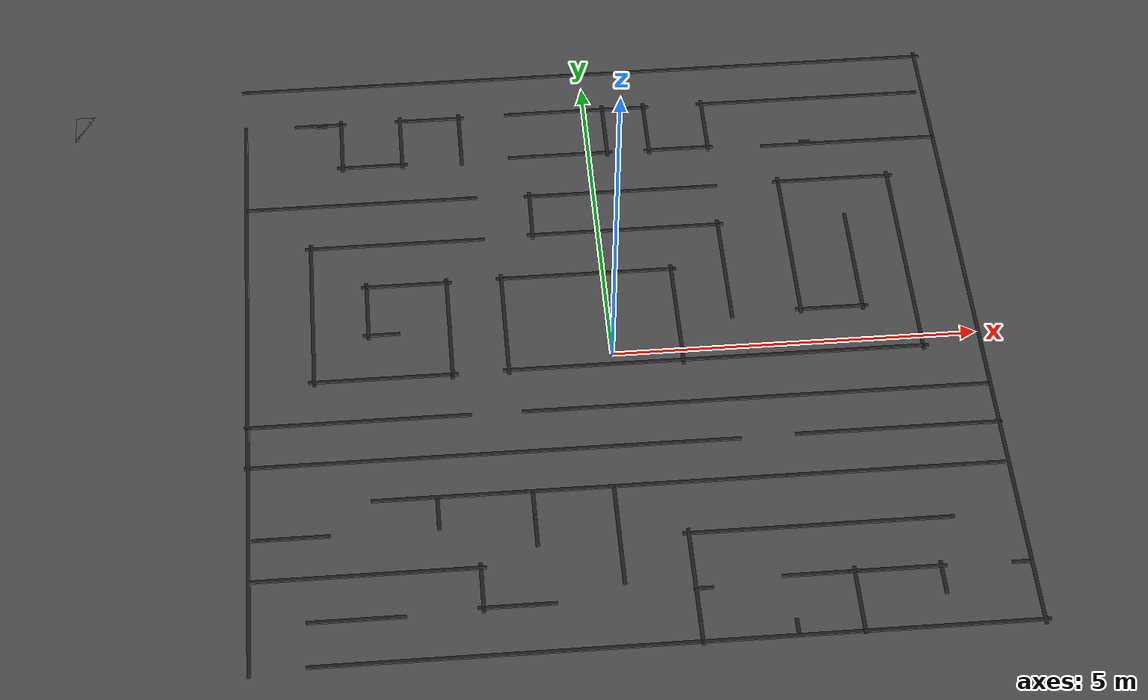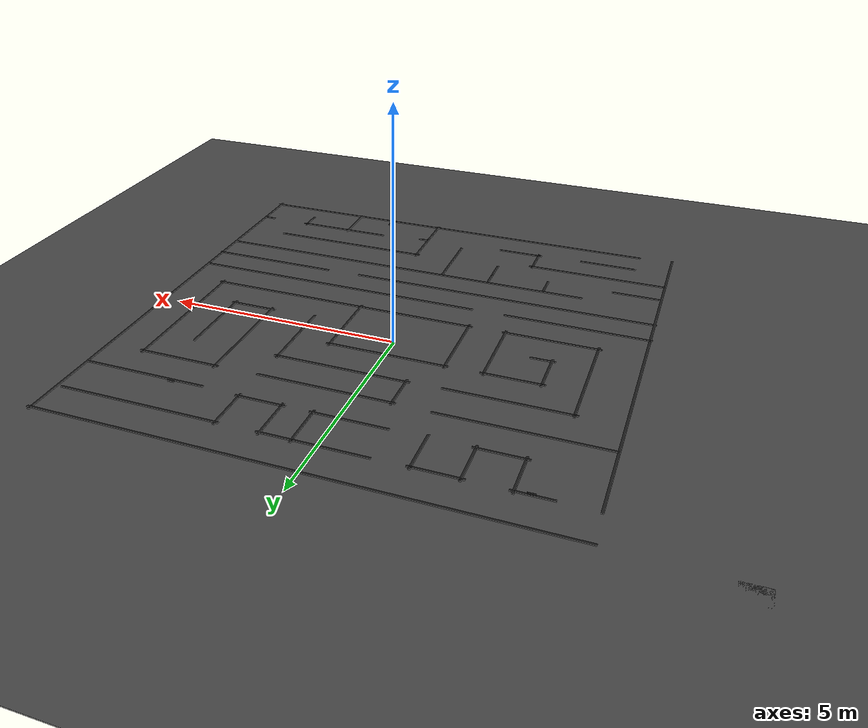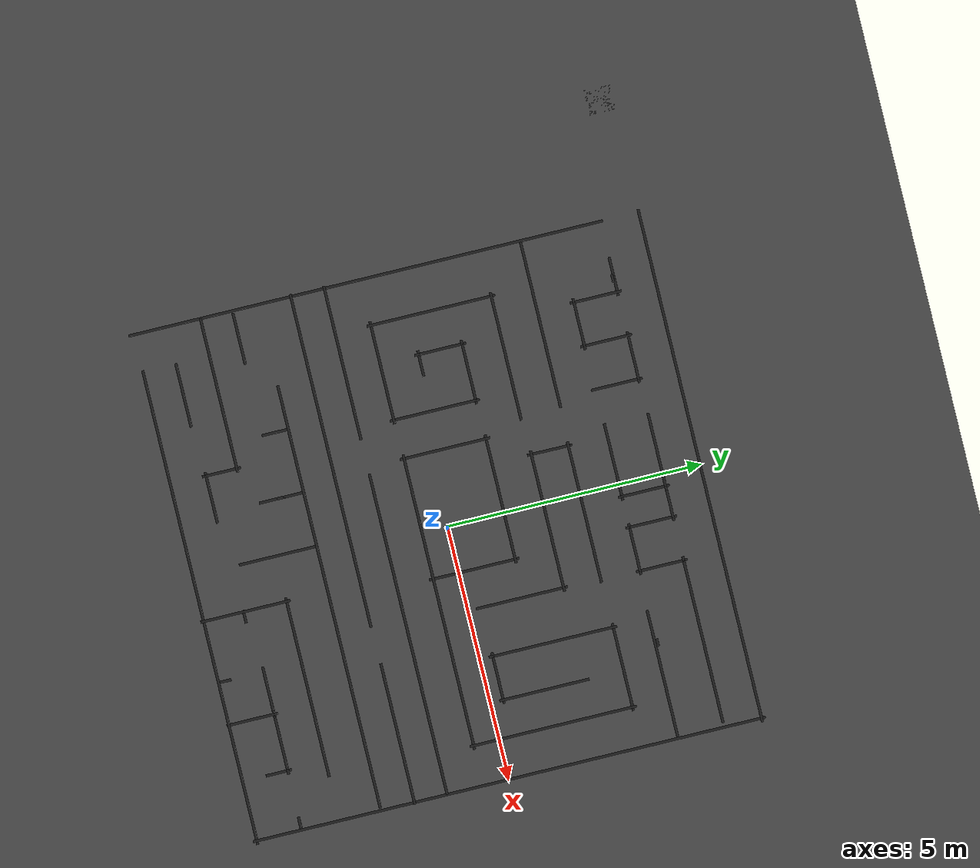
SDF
<sdf version="1.6">
 <world name="default">
  <model name="ground_plane">
   <static>1</static>
   <link name="link">
    <collision name="collision">
     <geometry><plane><normal>0 0 1</normal><size>100 100</size></plane></geometry>
     <surface><friction><ode><mu>100</mu><mu2>50</mu2></ode></friction></surface>
    </collision>
    <visual name="visual">
     <cast_shadows>0</cast_shadows>
     <geometry><plane><normal>0 0 1</normal><size>100 100</size></plane></geometry>
     <material>
      <script><uri>file://media/materials/scripts/gazebo.material</uri><name>Gazebo/Grey</name></script>
     </material>
    </visual>
   </link>
  </model>
  <model name="10x10_maze_2_top">
   <pose>0 0 0.4 0 -0 0</pose>
   <link name="Wall_102">
    <collision name="Wall_102_Collision">
     <geometry><box><size>3.25 0.05 0.01</size></box></geometry>
     <pose>0 0 0.005 0 -0 0</pose>
    </collision>
    <visual name="Wall_102_Visual">
     <pose>0 0 0.005 0 -0 0</pose>
     <geometry><box><size>3.25 0.05 0.01</size></box></geometry>
     <material>
      <script><uri>file://media/materials/scripts/gazebo.material</uri><name>Gazebo/Black</name></script>
      <ambient>0 0 0 1</ambient>
     </material>
    </visual>
    <pose>4.15557 1.06055 0 0 0 -1.5708</pose>
   </link>
   <link name="Wall_103">
    <collision name="Wall_103_Collision">
     <geometry><box><size>5.75 0.05 0.01</size></box></geometry>
     <pose>0 0 0.005 0 -0 0</pose>
    </collision>
    <visual name="Wall_103_Visual">
     <pose>0 0 0.005 0 -0 0</pose>
     <geometry><box><size>5.75 0.05 0.01</size></box></geometry>
     <material>
      <script><uri>file://media/materials/scripts/gazebo.material</uri><name>Gazebo/Black</name></script>
      <ambient>0 0 0 1</ambient>
     </material>
    </visual>
    <pose>1.35556 -0.489447 0 0 -0 3.14159</pose>
   </link>
   <link name="Wall_104">
    <collision name="Wall_104_Collision">
     <geometry><box><size>1.75 0.05 0.01</size></box></geometry>
     <pose>0 0 0.005 0 -0 0</pose>
    </collision>
    <visual name="Wall_104_Visual">
     <pose>0 0 0.005 0 -0 0</pose>
     <geometry><box><size>1.75 0.05 0.01</size></box></geometry>
     <material>
      <script><uri>file://media/materials/scripts/gazebo.material</uri><name>Gazebo/Black</name></script>
      <ambient>0 0 0 1</ambient>
     </material>
    </visual>
    <pose>-1.44443 0.310553 0 0 -0 1.5708</pose>
   </link>
   <link name="Wall_105">
    <collision name="Wall_105_Collision">
     <geometry><box><size>2.5 0.05 0.01</size></box></geometry>
     <pose>0 0 0.005 0 -0 0</pose>
    </collision>
    <visual name="Wall_105_Visual">
     <pose>0 0 0.005 0 -0 0</pose>
     <geometry><box><size>2.5 0.05 0.01</size></box></geometry>
     <material>
      <script><uri>file://media/materials/scripts/gazebo.material</uri><name>Gazebo/Black</name></script>
      <ambient>0 0 0 1</ambient>
     </material>
    </visual>
    <pose>-0.269435 1.11055 0 0 -0 0</pose>
   </link>
   <link name="Wall_106">
    <collision name="Wall_106_Collision">
     <geometry><box><size>1.75 0.05 0.01</size></box></geometry>
     <pose>0 0 0.005 0 -0 0</pose>
    </collision>
    <visual name="Wall_106_Visual">
     <pose>0 0 0.005 0 -0 0</pose>
     <geometry><box><size>1.75 0.05 0.01</size></box></geometry>
     <material>
      <script><uri>file://media/materials/scripts/gazebo.material</uri><name>Gazebo/Black</name></script>
      <ambient>0 0 0 1</ambient>
     </material>
    </visual>
    <pose>0.905565 0.310553 0 0 0 -1.5708</pose>
   </link>
   <link name="Wall_110">
    <collision name="Wall_110_Collision">
     <geometry><box><size>0.870658 0.05 0.01</size></box></geometry>
     <pose>0 0 0.005 0 -0 0</pose>
    </collision>
    <visual name="Wall_110_Visual">
     <pose>0 0 0.005 0 -0 0</pose>
     <geometry><box><size>0.870658 0.05 0.01</size></box></geometry>
     <material>
      <script><uri>file://media/materials/scripts/gazebo.material</uri><name>Gazebo/Black</name></script>
      <ambient>0 0 0 1</ambient>
     </material>
    </visual>
    <pose>-0.950482 2.23502 0 0 -0 1.56348</pose>
   </link>
   <link name="Wall_114">
    <collision name="Wall_114_Collision">
     <geometry><box><size>2.75 0.05 0.01</size></box></geometry>
     <pose>0 0 0.005 0 -0 0</pose>
    </collision>
    <visual name="Wall_114_Visual">
     <pose>0 0 0.005 0 -0 0</pose>
     <geometry><box><size>2.75 0.05 0.01</size></box></geometry>
     <material>
      <script><uri>file://media/materials/scripts/gazebo.material</uri><name>Gazebo/Black</name></script>
      <ambient>0 0 0 1</ambient>
     </material>
    </visual>
    <pose>0.346883 1.87471 0 0 -0 0</pose>
   </link>
   <link name="Wall_115">
    <collision name="Wall_115_Collision">
     <geometry><box><size>1.78042 0.05 0.01</size></box></geometry>
     <pose>0 0 0.005 0 -0 0</pose>
    </collision>
    <visual name="Wall_115_Visual">
     <pose>0 0 0.005 0 -0 0</pose>
     <geometry><box><size>1.78042 0.05 0.01</size></box></geometry>
     <material>
      <script><uri>file://media/materials/scripts/gazebo.material</uri><name>Gazebo/Black</name></script>
      <ambient>0 0 0 1</ambient>
     </material>
    </visual>
    <pose>1.64688 1.0595 0 0 0 -1.5708</pose>
   </link>
   <link name="Wall_120">
    <collision name="Wall_120_Collision">
     <geometry><box><size>2.5 0.05 0.01</size></box></geometry>
     <pose>0 0 0.005 0 -0 0</pose>
    </collision>
    <visual name="Wall_120_Visual">
     <pose>0 0 0.005 0 -0 0</pose>
     <geometry><box><size>2.5 0.05 0.01</size></box></geometry>
     <material>
      <script><uri>file://media/materials/scripts/gazebo.material</uri><name>Gazebo/Black</name></script>
      <ambient>0 0 0 1</ambient>
     </material>
    </visual>
    <pose>2.59579 1.43555 0 0 0 -1.5708</pose>
   </link>
   <link name="Wall_121">
    <collision name="Wall_121_Collision">
     <geometry><box><size>1 0.05 0.01</size></box></geometry>
     <pose>0 0 0.005 0 -0 0</pose>
    </collision>
    <visual name="Wall_121_Visual">
     <pose>0 0 0.005 0 -0 0</pose>
     <geometry><box><size>1 0.05 0.01</size></box></geometry>
     <material>
      <script><uri>file://media/materials/scripts/gazebo.material</uri><name>Gazebo/Black</name></script>
      <ambient>0 0 0 1</ambient>
     </material>
    </visual>
    <pose>3.02079 0.260553 0 0 -0 0</pose>
   </link>
   <link name="Wall_122">
    <collision name="Wall_122_Collision">
     <geometry><box><size>1.75 0.05 0.01</size></box></geometry>
     <pose>0 0 0.005 0 -0 0</pose>
    </collision>
    <visual name="Wall_122_Visual">
     <pose>0 0 0.005 0 -0 0</pose>
     <geometry><box><size>1.75 0.05 0.01</size></box></geometry>
     <material>
      <script><uri>file://media/materials/scripts/gazebo.material</uri><name>Gazebo/Black</name></script>
      <ambient>0 0 0 1</ambient>
     </material>
    </visual>
    <pose>3.44579 1.06055 0 0 -0 1.5708</pose>
   </link>
   <link name="Wall_124">
    <collision name="Wall_124_Collision">
     <geometry><box><size>2.5 0.05 0.01</size></box></geometry>
     <pose>0 0 0.005 0 -0 0</pose>
    </collision>
    <visual name="Wall_124_Visual">
     <pose>0 0 0.005 0 -0 0</pose>
     <geometry><box><size>2.5 0.05 0.01</size></box></geometry>
     <material>
      <script><uri>file://media/materials/scripts/gazebo.material</uri><name>Gazebo/Black</name></script>
      <ambient>0 0 0 1</ambient>
     </material>
    </visual>
    <pose>-2.87335 1.84429 0 0 -0 3.14159</pose>
   </link>
   <link name="Wall_128">
    <collision name="Wall_128_Collision">
     <geometry><box><size>2.5 0.05 0.01</size></box></geometry>
     <pose>0 0 0.005 0 -0 0</pose>
    </collision>
    <visual name="Wall_128_Visual">
     <pose>0 0 0.005 0 -0 0</pose>
     <geometry><box><size>2.5 0.05 0.01</size></box></geometry>
     <material>
      <script><uri>file://media/materials/scripts/gazebo.material</uri><name>Gazebo/Black</name></script>
      <ambient>0 0 0 1</ambient>
     </material>
    </visual>
    <pose>-4.04835 0.669288 0 0 0 -1.5708</pose>
   </link>
   <link name="Wall_129">
    <collision name="Wall_129_Collision">
     <geometry><box><size>2 0.05 0.01</size></box></geometry>
     <pose>0 0 0.005 0 -0 0</pose>
    </collision>
    <visual name="Wall_129_Visual">
     <pose>0 0 0.005 0 -0 0</pose>
     <geometry><box><size>2 0.05 0.01</size></box></geometry>
     <material>
      <script><uri>file://media/materials/scripts/gazebo.material</uri><name>Gazebo/Black</name></script>
      <ambient>0 0 0 1</ambient>
     </material>
    </visual>
    <pose>-3.12335 -0.505712 0 0 -0 0</pose>
   </link>
   <link name="Wall_130">
    <collision name="Wall_130_Collision">
     <geometry><box><size>1.75 0.05 0.01</size></box></geometry>
     <pose>0 0 0.005 0 -0 0</pose>
    </collision>
    <visual name="Wall_130_Visual">
     <pose>0 0 0.005 0 -0 0</pose>
     <geometry><box><size>1.75 0.05 0.01</size></box></geometry>
     <material>
      <script><uri>file://media/materials/scripts/gazebo.material</uri><name>Gazebo/Black</name></script>
      <ambient>0 0 0 1</ambient>
     </material>
    </visual>
    <pose>-2.19835 0.294288 0 0 -0 1.5708</pose>
   </link>
   <link name="Wall_131">
    <collision name="Wall_131_Collision">
     <geometry><box><size>1.25 0.05 0.01</size></box></geometry>
     <pose>0 0 0.005 0 -0 0</pose>
    </collision>
    <visual name="Wall_131_Visual">
     <pose>0 0 0.005 0 -0 0</pose>
     <geometry><box><size>1.25 0.05 0.01</size></box></geometry>
     <material>
      <script><uri>file://media/materials/scripts/gazebo.material</uri><name>Gazebo/Black</name></script>
      <ambient>0 0 0 1</ambient>
     </material>
    </visual>
    <pose>-2.74835 1.09429 0 0 -0 3.14159</pose>
   </link>
   <link name="Wall_132">
    <collision name="Wall_132_Collision">
     <geometry><box><size>1 0.05 0.01</size></box></geometry>
     <pose>0 0 0.005 0 -0 0</pose>
    </collision>
    <visual name="Wall_132_Visual">
     <pose>0 0 0.005 0 -0 0</pose>
     <geometry><box><size>1 0.05 0.01</size></box></geometry>
     <material>
      <script><uri>file://media/materials/scripts/gazebo.material</uri><name>Gazebo/Black</name></script>
      <ambient>0 0 0 1</ambient>
     </material>
    </visual>
    <pose>-3.29834 0.669288 0 0 0 -1.5708</pose>
   </link>
   <link name="Wall_133">
    <collision name="Wall_133_Collision">
     <geometry><box><size>0.5 0.05 0.01</size></box></geometry>
     <pose>0 0 0.005 0 -0 0</pose>
    </collision>
    <visual name="Wall_133_Visual">
     <pose>0 0 0.005 0 -0 0</pose>
     <geometry><box><size>0.5 0.05 0.01</size></box></geometry>
     <material>
      <script><uri>file://media/materials/scripts/gazebo.material</uri><name>Gazebo/Black</name></script>
      <ambient>0 0 0 1</ambient>
     </material>
    </visual>
    <pose>-3.12335 0.244288 0 0 -0 0</pose>
   </link>
   <link name="Wall_135">
    <collision name="Wall_135_Collision">
     <geometry><box><size>3 0.05 0.01</size></box></geometry>
     <pose>0 0 0.005 0 -0 0</pose>
    </collision>
    <visual name="Wall_135_Visual">
     <pose>0 0 0.005 0 -0 0</pose>
     <geometry><box><size>3 0.05 0.01</size></box></geometry>
     <material>
      <script><uri>file://media/materials/scripts/gazebo.material</uri><name>Gazebo/Black</name></script>
      <ambient>0 0 0 1</ambient>
     </material>
    </visual>
    <pose>-3.48239 -1.19746 0 0 -0 0</pose>
   </link>
   <link name="Wall_137">
    <collision name="Wall_137_Collision">
     <geometry><box><size>6.25 0.05 0.01</size></box></geometry>
     <pose>0 0 0.005 0 -0 0</pose>
    </collision>
    <visual name="Wall_137_Visual">
     <pose>0 0 0.005 0 -0 0</pose>
     <geometry><box><size>6.25 0.05 0.01</size></box></geometry>
     <material>
      <script><uri>file://media/materials/scripts/gazebo.material</uri><name>Gazebo/Black</name></script>
      <ambient>0 0 0 1</ambient>
     </material>
    </visual>
    <pose>1.80792 -1.19746 0 0 -0 0</pose>
   </link>
   <link name="Wall_139">
    <collision name="Wall_139_Collision">
     <geometry><box><size>6.5 0.05 0.01</size></box></geometry>
     <pose>0 0 0.005 0 -0 0</pose>
    </collision>
    <visual name="Wall_139_Visual">
     <pose>0 0 0.005 0 -0 0</pose>
     <geometry><box><size>6.5 0.05 0.01</size></box></geometry>
     <material>
      <script><uri>file://media/materials/scripts/gazebo.material</uri><name>Gazebo/Black</name></script>
      <ambient>0 0 0 1</ambient>
     </material>
    </visual>
    <pose>-1.73239 -1.85144 0 0 -0 0</pose>
   </link>
   <link name="Wall_141">
    <collision name="Wall_141_Collision">
     <geometry><box><size>2.75 0.05 0.01</size></box></geometry>
     <pose>0 0 0.005 0 -0 0</pose>
    </collision>
    <visual name="Wall_141_Visual">
     <pose>0 0 0.005 0 -0 0</pose>
     <geometry><box><size>2.75 0.05 0.01</size></box></geometry>
     <material>
      <script><uri>file://media/materials/scripts/gazebo.material</uri><name>Gazebo/Black</name></script>
      <ambient>0 0 0 1</ambient>
     </material>
    </visual>
    <pose>3.60156 -1.83623 0 0 -0 0</pose>
   </link>
   <link name="Wall_145">
    <collision name="Wall_145_Collision">
     <geometry><box><size>8.25 0.05 0.01</size></box></geometry>
     <pose>0 0 0.005 0 -0 0</pose>
    </collision>
    <visual name="Wall_145_Visual">
     <pose>0 0 0.005 0 -0 0</pose>
     <geometry><box><size>8.25 0.05 0.01</size></box></geometry>
     <material>
      <script><uri>file://media/materials/scripts/gazebo.material</uri><name>Gazebo/Black</name></script>
      <ambient>0 0 0 1</ambient>
     </material>
    </visual>
    <pose>0.769944 -2.49021 0 0 -0 0</pose>
   </link>
   <link name="Wall_153">
    <collision name="Wall_153_Collision">
     <geometry><box><size>1.25 0.05 0.01</size></box></geometry>
     <pose>0 0 0.005 0 -0 0</pose>
    </collision>
    <visual name="Wall_153_Visual">
     <pose>0 0 0.005 0 -0 0</pose>
     <geometry><box><size>1.25 0.05 0.01</size></box></geometry>
     <material>
      <script><uri>file://media/materials/scripts/gazebo.material</uri><name>Gazebo/Black</name></script>
      <ambient>0 0 0 1</ambient>
     </material>
    </visual>
    <pose>-3.59695 -4.26963 0 0 -0 0</pose>
   </link>
   <link name="Wall_156">
    <collision name="Wall_156_Collision">
     <geometry><box><size>3 0.05 0.01</size></box></geometry>
     <pose>0 0 0.005 0 -0 0</pose>
    </collision>
    <visual name="Wall_156_Visual">
     <pose>0 0 0.005 0 -0 0</pose>
     <geometry><box><size>3 0.05 0.01</size></box></geometry>
     <material>
      <script><uri>file://media/materials/scripts/gazebo.material</uri><name>Gazebo/Black</name></script>
      <ambient>0 0 0 1</ambient>
     </material>
    </visual>
    <pose>-3.43676 -3.61565 0 0 -0 0</pose>
   </link>
   <link name="Wall_157">
    <collision name="Wall_157_Collision">
     <geometry><box><size>0.75 0.05 0.01</size></box></geometry>
     <pose>0 0 0.005 0 -0 0</pose>
    </collision>
    <visual name="Wall_157_Visual">
     <pose>0 0 0.005 0 -0 0</pose>
     <geometry><box><size>0.75 0.05 0.01</size></box></geometry>
     <material>
      <script><uri>file://media/materials/scripts/gazebo.material</uri><name>Gazebo/Black</name></script>
      <ambient>0 0 0 1</ambient>
     </material>
    </visual>
    <pose>-2.01177 -3.91565 0 0 0 -1.5708</pose>
   </link>
   <link name="Wall_162">
    <collision name="Wall_162_Collision">
     <geometry><box><size>1 0.05 0.01</size></box></geometry>
     <pose>0 0 0.005 0 -0 0</pose>
    </collision>
    <visual name="Wall_162_Visual">
     <pose>0 0 0.005 0 -0 0</pose>
     <geometry><box><size>1 0.05 0.01</size></box></geometry>
     <material>
      <script><uri>file://media/materials/scripts/gazebo.material</uri><name>Gazebo/Black</name></script>
      <ambient>0 0 0 1</ambient>
     </material>
    </visual>
    <pose>-4.39114 -2.99209 0 0 -0 0</pose>
   </link>
   <link name="Wall_164">
    <collision name="Wall_164_Collision">
     <geometry><box><size>0.5 0.05 0.01</size></box></geometry>
     <pose>0 0 0.005 0 -0 0</pose>
    </collision>
    <visual name="Wall_164_Visual">
     <pose>0 0 0.005 0 -0 0</pose>
     <geometry><box><size>0.5 0.05 0.01</size></box></geometry>
     <material>
      <script><uri>file://media/materials/scripts/gazebo.material</uri><name>Gazebo/Black</name></script>
      <ambient>0 0 0 1</ambient>
     </material>
    </visual>
    <pose>-2.50441 -2.75646 0 0 0 -1.5708</pose>
   </link>
   <link name="Wall_166">
    <collision name="Wall_166_Collision">
     <geometry><box><size>0.5 0.05 0.01</size></box></geometry>
     <pose>0 0 0.005 0 -0 0</pose>
    </collision>
    <visual name="Wall_166_Visual">
     <pose>0 0 0.005 0 -0 0</pose>
     <geometry><box><size>0.5 0.05 0.01</size></box></geometry>
     <material>
      <script><uri>file://media/materials/scripts/gazebo.material</uri><name>Gazebo/Black</name></script>
      <ambient>0 0 0 1</ambient>
     </material>
    </visual>
    <pose>-1.2725 -2.75646 0 0 0 -1.5708</pose>
   </link>
   <link name="Wall_167">
    <collision name="Wall_167_Collision">
     <geometry><box><size>0.5 0.05 0.01</size></box></geometry>
     <pose>0 0 0.005 0 -0 0</pose>
    </collision>
    <visual name="Wall_167_Visual">
     <pose>0 0 0.005 0 -0 0</pose>
     <geometry><box><size>0.5 0.05 0.01</size></box></geometry>
     <material>
      <script><uri>file://media/materials/scripts/gazebo.material</uri><name>Gazebo/Black</name></script>
      <ambient>0 0 0 1</ambient>
     </material>
    </visual>
    <pose>-1.2725 -3.10646 0 0 0 -1.5708</pose>
   </link>
   <link name="Wall_169">
    <collision name="Wall_169_Collision">
     <geometry><box><size>1.5 0.05 0.01</size></box></geometry>
     <pose>0 0 0.005 0 -0 0</pose>
    </collision>
    <visual name="Wall_169_Visual">
     <pose>0 0 0.005 0 -0 0</pose>
     <geometry><box><size>1.5 0.05 0.01</size></box></geometry>
     <material>
      <script><uri>file://media/materials/scripts/gazebo.material</uri><name>Gazebo/Black</name></script>
      <ambient>0 0 0 1</ambient>
     </material>
    </visual>
    <pose>-0.223097 -3.25646 0 0 0 -1.5708</pose>
   </link>
   <link name="Wall_171">
    <collision name="Wall_171_Collision">
     <geometry><box><size>1 0.05 0.01</size></box></geometry>
     <pose>0 0 0.005 0 -0 0</pose>
    </collision>
    <visual name="Wall_171_Visual">
     <pose>0 0 0.005 0 -0 0</pose>
     <geometry><box><size>1 0.05 0.01</size></box></geometry>
     <material>
      <script><uri>file://media/materials/scripts/gazebo.material</uri><name>Gazebo/Black</name></script>
      <ambient>0 0 0 1</ambient>
     </material>
    </visual>
    <pose>-1.58677 -4.21565 0 0 -0 0</pose>
   </link>
   <link name="Wall_173">
    <collision name="Wall_173_Collision">
     <geometry><box><size>1.75 0.05 0.01</size></box></geometry>
     <pose>0 0 0.005 0 -0 0</pose>
    </collision>
    <visual name="Wall_173_Visual">
     <pose>0 0 0.005 0 -0 0</pose>
     <geometry><box><size>1.75 0.05 0.01</size></box></geometry>
     <material>
      <script><uri>file://media/materials/scripts/gazebo.material</uri><name>Gazebo/Black</name></script>
      <ambient>0 0 0 1</ambient>
     </material>
    </visual>
    <pose>0.659011 -4.09319 0 0 -0 1.5708</pose>
   </link>
   <link name="Wall_174">
    <collision name="Wall_174_Collision">
     <geometry><box><size>3.5 0.05 0.01</size></box></geometry>
     <pose>0 0 0.005 0 -0 0</pose>
    </collision>
    <visual name="Wall_174_Visual">
     <pose>0 0 0.005 0 -0 0</pose>
     <geometry><box><size>3.5 0.05 0.01</size></box></geometry>
     <material>
      <script><uri>file://media/materials/scripts/gazebo.material</uri><name>Gazebo/Black</name></script>
      <ambient>0 0 0 1</ambient>
     </material>
    </visual>
    <pose>2.33401 -3.29319 0 0 -0 0</pose>
   </link>
   <link name="Wall_176">
    <collision name="Wall_176_Collision">
     <geometry><box><size>1 0.05 0.01</size></box></geometry>
     <pose>0 0 0.005 0 -0 0</pose>
    </collision>
    <visual name="Wall_176_Visual">
     <pose>0 0 0.005 0 -0 0</pose>
     <geometry><box><size>1 0.05 0.01</size></box></geometry>
     <material>
      <script><uri>file://media/materials/scripts/gazebo.material</uri><name>Gazebo/Black</name></script>
      <ambient>0 0 0 1</ambient>
     </material>
    </visual>
    <pose>2.68177 -4.45298 0 0 -0 1.5708</pose>
   </link>
   <link name="Wall_186">
    <collision name="Wall_186_Collision">
     <geometry><box><size>0.25 0.05 0.01</size></box></geometry>
     <pose>0 0 0.005 0 -0 0</pose>
    </collision>
    <visual name="Wall_186_Visual">
     <pose>0 0 0.005 0 -0 0</pose>
     <geometry><box><size>0.25 0.05 0.01</size></box></geometry>
     <material>
      <script><uri>file://media/materials/scripts/gazebo.material</uri><name>Gazebo/Black</name></script>
      <ambient>0 0 0 1</ambient>
     </material>
    </visual>
    <pose>0.754637 -4.13275 0 0 -0 0</pose>
   </link>
   <link name="Wall_188">
    <collision name="Wall_188_Collision">
     <geometry><box><size>0.25 0.05 0.01</size></box></geometry>
     <pose>0 0 0.005 0 -0 0</pose>
    </collision>
    <visual name="Wall_188_Visual">
     <pose>0 0 0.005 0 -0 0</pose>
     <geometry><box><size>0.25 0.05 0.01</size></box></geometry>
     <material>
      <script><uri>file://media/materials/scripts/gazebo.material</uri><name>Gazebo/Black</name></script>
      <ambient>0 0 0 1</ambient>
     </material>
    </visual>
    <pose>4.80663 -4.0415 0 0 -0 3.14159</pose>
   </link>
   <link name="Wall_190">
    <collision name="Wall_190_Collision">
     <geometry><box><size>1 0.05 0.01</size></box></geometry>
     <pose>0 0 0.005 0 -0 0</pose>
    </collision>
    <visual name="Wall_190_Visual">
     <pose>0 0 0.005 0 -0 0</pose>
     <geometry><box><size>1 0.05 0.01</size></box></geometry>
     <material>
      <script><uri>file://media/materials/scripts/gazebo.material</uri><name>Gazebo/Black</name></script>
      <ambient>0 0 0 1</ambient>
     </material>
    </visual>
    <pose>2.25677 -4.02798 0 0 -0 3.14159</pose>
   </link>
   <link name="Wall_192">
    <collision name="Wall_192_Collision">
     <geometry><box><size>1.25 0.05 0.01</size></box></geometry>
     <pose>0 0 0.005 0 -0 0</pose>
    </collision>
    <visual name="Wall_192_Visual">
     <pose>0 0 0.005 0 -0 0</pose>
     <geometry><box><size>1.25 0.05 0.01</size></box></geometry>
     <material>
      <script><uri>file://media/materials/scripts/gazebo.material</uri><name>Gazebo/Black</name></script>
      <ambient>0 0 0 1</ambient>
     </material>
    </visual>
    <pose>3.23177 -4.02798 0 0 -0 0</pose>
   </link>
   <link name="Wall_194">
    <collision name="Wall_194_Collision">
     <geometry><box><size>0.25 0.05 0.01</size></box></geometry>
     <pose>0 0 0.005 0 -0 0</pose>
    </collision>
    <visual name="Wall_194_Visual">
     <pose>0 0 0.005 0 -0 0</pose>
     <geometry><box><size>0.25 0.05 0.01</size></box></geometry>
     <material>
      <script><uri>file://media/materials/scripts/gazebo.material</uri><name>Gazebo/Black</name></script>
      <ambient>0 0 0 1</ambient>
     </material>
    </visual>
    <pose>1.85349 -4.78989 0 0 -0 1.5708</pose>
   </link>
   <link name="Wall_196">
    <collision name="Wall_196_Collision">
     <geometry><box><size>0.5 0.05 0.01</size></box></geometry>
     <pose>0 0 0.005 0 -0 0</pose>
    </collision>
    <visual name="Wall_196_Visual">
     <pose>0 0 0.005 0 -0 0</pose>
     <geometry><box><size>0.5 0.05 0.01</size></box></geometry>
     <material>
      <script><uri>file://media/materials/scripts/gazebo.material</uri><name>Gazebo/Black</name></script>
      <ambient>0 0 0 1</ambient>
     </material>
    </visual>
    <pose>3.78178 -4.20298 0 0 0 -1.5708</pose>
   </link>
   <link name="Wall_26">
    <collision name="Wall_26_Collision">
     <geometry><box><size>10 0.05 0.01</size></box></geometry>
     <pose>0 0 0.005 0 -0 0</pose>
    </collision>
    <visual name="Wall_26_Visual">
     <pose>0 0 0.005 0 -0 0</pose>
     <geometry><box><size>10 0.05 0.01</size></box></geometry>
     <material>
      <script><uri>file://media/materials/scripts/gazebo.material</uri><name>Gazebo/Black</name></script>
      <ambient>0 0 0 1</ambient>
     </material>
    </visual>
    <pose>0.011565 4.93839 0 0 -0 0</pose>
   </link>
   <link name="Wall_27">
    <collision name="Wall_27_Collision">
     <geometry><box><size>10 0.05 0.01</size></box></geometry>
     <pose>0 0 0.005 0 -0 0</pose>
    </collision>
    <visual name="Wall_27_Visual">
     <pose>0 0 0.005 0 -0 0</pose>
     <geometry><box><size>10 0.05 0.01</size></box></geometry>
     <material>
      <script><uri>file://media/materials/scripts/gazebo.material</uri><name>Gazebo/Black</name></script>
      <ambient>0 0 0 1</ambient>
     </material>
    </visual>
    <pose>4.93656 0.013385 0 0 0 -1.5708</pose>
   </link>
   <link name="Wall_30">
    <collision name="Wall_30_Collision">
     <geometry><box><size>9.25 0.05 0.01</size></box></geometry>
     <pose>0 0 0.005 0 -0 0</pose>
    </collision>
    <visual name="Wall_30_Visual">
     <pose>0 0 0.005 0 -0 0</pose>
     <geometry><box><size>9.25 0.05 0.01</size></box></geometry>
     <material>
      <script><uri>file://media/materials/scripts/gazebo.material</uri><name>Gazebo/Black</name></script>
      <ambient>0 0 0 1</ambient>
     </material>
    </visual>
    <pose>0.386565 -4.91162 0 0 -0 3.14159</pose>
   </link>
   <link name="Wall_32">
    <collision name="Wall_32_Collision">
     <geometry><box><size>9.25 0.05 0.01</size></box></geometry>
     <pose>0 0 0.005 0 -0 0</pose>
    </collision>
    <visual name="Wall_32_Visual">
     <pose>0 0 0.005 0 -0 0</pose>
     <geometry><box><size>9.25 0.05 0.01</size></box></geometry>
     <material>
      <script><uri>file://media/materials/scripts/gazebo.material</uri><name>Gazebo/Black</name></script>
      <ambient>0 0 0 1</ambient>
     </material>
    </visual>
    <pose>-4.93656 -0.388385 0 0 -0 1.5708</pose>
   </link>
   <link name="Wall_36">
    <collision name="Wall_36_Collision">
     <geometry><box><size>0.15 0.05 0.01</size></box></geometry>
     <pose>0 0 0.005 0 -0 0</pose>
    </collision>
    <visual name="Wall_36_Visual">
     <pose>0 0 0.005 0 -0 0</pose>
     <geometry><box><size>0.15 0.05 0.01</size></box></geometry>
     <material>
      <script><uri>file://media/materials/scripts/gazebo.material</uri><name>Gazebo/Black</name></script>
      <ambient>0 0 0 1</ambient>
     </material>
    </visual>
    <pose>-3.83656 4.16162 0 0 -0 0</pose>
   </link>
   <link name="Wall_50">
    <collision name="Wall_50_Collision">
     <geometry><box><size>1 0.05 0.01</size></box></geometry>
     <pose>0 0 0.005 0 -0 0</pose>
    </collision>
    <visual name="Wall_50_Visual">
     <pose>0 0 0.005 0 -0 0</pose>
     <geometry><box><size>1 0.05 0.01</size></box></geometry>
     <material>
      <script><uri>file://media/materials/scripts/gazebo.material</uri><name>Gazebo/Black</name></script>
      <ambient>0 0 0 1</ambient>
     </material>
    </visual>
    <pose>-3.13787 3.34011 0 0 -0 0</pose>
   </link>
   <link name="Wall_51">
    <collision name="Wall_51_Collision">
     <geometry><box><size>1 0.05 0.01</size></box></geometry>
     <pose>0 0 0.005 0 -0 0</pose>
    </collision>
    <visual name="Wall_51_Visual">
     <pose>0 0 0.005 0 -0 0</pose>
     <geometry><box><size>1 0.05 0.01</size></box></geometry>
     <material>
      <script><uri>file://media/materials/scripts/gazebo.material</uri><name>Gazebo/Black</name></script>
      <ambient>0 0 0 1</ambient>
     </material>
    </visual>
    <pose>-2.71287 3.76511 0 0 -0 1.5708</pose>
   </link>
   <link name="Wall_52">
    <collision name="Wall_52_Collision">
     <geometry><box><size>1 0.05 0.01</size></box></geometry>
     <pose>0 0 0.005 0 -0 0</pose>
    </collision>
    <visual name="Wall_52_Visual">
     <pose>0 0 0.005 0 -0 0</pose>
     <geometry><box><size>1 0.05 0.01</size></box></geometry>
     <material>
      <script><uri>file://media/materials/scripts/gazebo.material</uri><name>Gazebo/Black</name></script>
      <ambient>0 0 0 1</ambient>
     </material>
    </visual>
    <pose>-2.28787 4.19011 0 0 -0 0</pose>
   </link>
   <link name="Wall_53">
    <collision name="Wall_53_Collision">
     <geometry><box><size>1 0.05 0.01</size></box></geometry>
     <pose>0 0 0.005 0 -0 0</pose>
    </collision>
    <visual name="Wall_53_Visual">
     <pose>0 0 0.005 0 -0 0</pose>
     <geometry><box><size>1 0.05 0.01</size></box></geometry>
     <material>
      <script><uri>file://media/materials/scripts/gazebo.material</uri><name>Gazebo/Black</name></script>
      <ambient>0 0 0 1</ambient>
     </material>
    </visual>
    <pose>-1.86287 3.76511 0 0 0 -1.5708</pose>
   </link>
   <link name="Wall_56">
    <collision name="Wall_56_Collision">
     <geometry><box><size>1.5 0.05 0.01</size></box></geometry>
     <pose>0 0 0.005 0 -0 0</pose>
    </collision>
    <visual name="Wall_56_Visual">
     <pose>0 0 0.005 0 -0 0</pose>
     <geometry><box><size>1.5 0.05 0.01</size></box></geometry>
     <material>
      <script><uri>file://media/materials/scripts/gazebo.material</uri><name>Gazebo/Black</name></script>
      <ambient>0 0 0 1</ambient>
     </material>
    </visual>
    <pose>-0.444597 4.2076 0 0 -0 0</pose>
   </link>
   <link name="Wall_57">
    <collision name="Wall_57_Collision">
     <geometry><box><size>1 0.05 0.01</size></box></geometry>
     <pose>0 0 0.005 0 -0 0</pose>
    </collision>
    <visual name="Wall_57_Visual">
     <pose>0 0 0.005 0 -0 0</pose>
     <geometry><box><size>1 0.05 0.01</size></box></geometry>
     <material>
      <script><uri>file://media/materials/scripts/gazebo.material</uri><name>Gazebo/Black</name></script>
      <ambient>0 0 0 1</ambient>
     </material>
    </visual>
    <pose>0.230403 3.7826 0 0 0 -1.5708</pose>
   </link>
   <link name="Wall_58">
    <collision name="Wall_58_Collision">
     <geometry><box><size>1.5 0.05 0.01</size></box></geometry>
     <pose>0 0 0.005 0 -0 0</pose>
    </collision>
    <visual name="Wall_58_Visual">
     <pose>0 0 0.005 0 -0 0</pose>
     <geometry><box><size>1.5 0.05 0.01</size></box></geometry>
     <material>
      <script><uri>file://media/materials/scripts/gazebo.material</uri><name>Gazebo/Black</name></script>
      <ambient>0 0 0 1</ambient>
     </material>
    </visual>
    <pose>-0.444597 3.3576 0 0 -0 3.14159</pose>
   </link>
   <link name="Wall_64">
    <collision name="Wall_64_Collision">
     <geometry><box><size>0.15 0.05 0.01</size></box></geometry>
     <pose>0 0 0.005 0 -0 0</pose>
    </collision>
    <visual name="Wall_64_Visual">
     <pose>0 0 0.005 0 -0 0</pose>
     <geometry><box><size>0.15 0.05 0.01</size></box></geometry>
     <material>
      <script><uri>file://media/materials/scripts/gazebo.material</uri><name>Gazebo/Black</name></script>
      <ambient>0 0 0 1</ambient>
     </material>
    </visual>
    <pose>3.0804 3.3576 0 0 -0 0</pose>
   </link>
   <link name="Wall_70">
    <collision name="Wall_70_Collision">
     <geometry><box><size>0.75 0.05 0.01</size></box></geometry>
     <pose>0 0 0.005 0 -0 0</pose>
    </collision>
    <visual name="Wall_70_Visual">
     <pose>0 0 0.005 0 -0 0</pose>
     <geometry><box><size>0.75 0.05 0.01</size></box></geometry>
     <material>
      <script><uri>file://media/materials/scripts/gazebo.material</uri><name>Gazebo/Black</name></script>
      <ambient>0 0 0 1</ambient>
     </material>
    </visual>
    <pose>0.530403 4.2076 0 0 -0 0</pose>
   </link>
   <link name="Wall_71">
    <collision name="Wall_71_Collision">
     <geometry><box><size>1 0.05 0.01</size></box></geometry>
     <pose>0 0 0.005 0 -0 0</pose>
    </collision>
    <visual name="Wall_71_Visual">
     <pose>0 0 0.005 0 -0 0</pose>
     <geometry><box><size>1 0.05 0.01</size></box></geometry>
     <material>
      <script><uri>file://media/materials/scripts/gazebo.material</uri><name>Gazebo/Black</name></script>
      <ambient>0 0 0 1</ambient>
     </material>
    </visual>
    <pose>0.830403 3.7826 0 0 0 -1.5708</pose>
   </link>
   <link name="Wall_74">
    <collision name="Wall_74_Collision">
     <geometry><box><size>1 0.05 0.01</size></box></geometry>
     <pose>0 0 0.005 0 -0 0</pose>
    </collision>
    <visual name="Wall_74_Visual">
     <pose>0 0 0.005 0 -0 0</pose>
     <geometry><box><size>1 0.05 0.01</size></box></geometry>
     <material>
      <script><uri>file://media/materials/scripts/gazebo.material</uri><name>Gazebo/Black</name></script>
      <ambient>0 0 0 1</ambient>
     </material>
    </visual>
    <pose>1.2554 3.3576 0 0 -0 0</pose>
   </link>
   <link name="Wall_76">
    <collision name="Wall_76_Collision">
     <geometry><box><size>1 0.05 0.01</size></box></geometry>
     <pose>0 0 0.005 0 -0 0</pose>
    </collision>
    <visual name="Wall_76_Visual">
     <pose>0 0 0.005 0 -0 0</pose>
     <geometry><box><size>1 0.05 0.01</size></box></geometry>
     <material>
      <script><uri>file://media/materials/scripts/gazebo.material</uri><name>Gazebo/Black</name></script>
      <ambient>0 0 0 1</ambient>
     </material>
    </visual>
    <pose>1.6804 3.7826 0 0 -0 1.5708</pose>
   </link>
   <link name="Wall_77">
    <collision name="Wall_77_Collision">
     <geometry><box><size>3.25 0.05 0.01</size></box></geometry>
     <pose>0 0 0.005 0 -0 0</pose>
    </collision>
    <visual name="Wall_77_Visual">
     <pose>0 0 0.005 0 -0 0</pose>
     <geometry><box><size>3.25 0.05 0.01</size></box></geometry>
     <material>
      <script><uri>file://media/materials/scripts/gazebo.material</uri><name>Gazebo/Black</name></script>
      <ambient>0 0 0 1</ambient>
     </material>
    </visual>
    <pose>3.2304 4.2076 0 0 -0 0</pose>
   </link>
   <link name="Wall_79">
    <collision name="Wall_79_Collision">
     <geometry><box><size>2.5 0.05 0.01</size></box></geometry>
     <pose>0 0 0.005 0 -0 0</pose>
    </collision>
    <visual name="Wall_79_Visual">
     <pose>0 0 0.005 0 -0 0</pose>
     <geometry><box><size>2.5 0.05 0.01</size></box></geometry>
     <material>
      <script><uri>file://media/materials/scripts/gazebo.material</uri><name>Gazebo/Black</name></script>
      <ambient>0 0 0 1</ambient>
     </material>
    </visual>
    <pose>3.68689 3.31015 0 0 -0 3.14159</pose>
   </link>
   <link name="Wall_85">
    <collision name="Wall_85_Collision">
     <geometry><box><size>1 0.05 0.01</size></box></geometry>
     <pose>0 0 0.005 0 -0 0</pose>
    </collision>
    <visual name="Wall_85_Visual">
     <pose>0 0 0.005 0 -0 0</pose>
     <geometry><box><size>1 0.05 0.01</size></box></geometry>
     <material>
      <script><uri>file://media/materials/scripts/gazebo.material</uri><name>Gazebo/Black</name></script>
      <ambient>0 0 0 1</ambient>
     </material>
    </visual>
    <pose>-3.56287 3.76511 0 0 -0 1.5708</pose>
   </link>
   <link name="Wall_86">
    <collision name="Wall_86_Collision">
     <geometry><box><size>0.75 0.05 0.01</size></box></geometry>
     <pose>0 0 0.005 0 -0 0</pose>
    </collision>
    <visual name="Wall_86_Visual">
     <pose>0 0 0.005 0 -0 0</pose>
     <geometry><box><size>0.75 0.05 0.01</size></box></geometry>
     <material>
      <script><uri>file://media/materials/scripts/gazebo.material</uri><name>Gazebo/Black</name></script>
      <ambient>0 0 0 1</ambient>
     </material>
    </visual>
    <pose>-3.86287 4.19011 0 0 -0 3.14159</pose>
   </link>
   <link name="Wall_92">
    <collision name="Wall_92_Collision">
     <geometry><box><size>3.25 0.05 0.01</size></box></geometry>
     <pose>0 0 0.005 0 -0 0</pose>
    </collision>
    <visual name="Wall_92_Visual">
     <pose>0 0 0.005 0 -0 0</pose>
     <geometry><box><size>3.25 0.05 0.01</size></box></geometry>
     <material>
      <script><uri>file://media/materials/scripts/gazebo.material</uri><name>Gazebo/Black</name></script>
      <ambient>0 0 0 1</ambient>
     </material>
    </visual>
    <pose>-3.3065 2.62576 0 0 -0 0</pose>
   </link>
   <link name="Wall_94">
    <collision name="Wall_94_Collision">
     <geometry><box><size>2.75 0.05 0.01</size></box></geometry>
     <pose>0 0 0.005 0 -0 0</pose>
    </collision>
    <visual name="Wall_94_Visual">
     <pose>0 0 0.005 0 -0 0</pose>
     <geometry><box><size>2.75 0.05 0.01</size></box></geometry>
     <material>
      <script><uri>file://media/materials/scripts/gazebo.material</uri><name>Gazebo/Black</name></script>
      <ambient>0 0 0 1</ambient>
     </material>
    </visual>
    <pose>0.352153 2.59534 0 0 -0 0</pose>
   </link>
   <link name="Wall_99">
    <collision name="Wall_99_Collision">
     <geometry><box><size>1.70977 0.05 0.01</size></box></geometry>
     <pose>0 0 0.005 0 -0 0</pose>
    </collision>
    <visual name="Wall_99_Visual">
     <pose>0 0 0.005 0 -0 0</pose>
     <geometry><box><size>1.70977 0.05 0.01</size></box></geometry>
     <material>
      <script><uri>file://media/materials/scripts/gazebo.material</uri><name>Gazebo/Black</name></script>
      <ambient>0 0 0 1</ambient>
     </material>
    </visual>
    <pose>3.37568 2.61055 0 0 -0 0</pose>
   </link>
   <static>1</static>
  </model>
  <model name="asphalt_white_plane">
   <static>1</static>
   <link name="link">
    <collision name="collision"><geometry><box><size>60 60 0.005</size></box></geometry></collision>
    <visual name="visual">
     <cast_shadows>0</cast_shadows>
     <geometry><box><size>60 60 0.005</size></box></geometry>
     <material>
      <script>
       <uri>model://asphalt_white_plane/materials/scripts</uri>
       <uri>model://asphalt_white_plane/materials/textures</uri>
       <name>vrc/asphalt_white</name>
      </script>
     </material>
    </visual>
   </link>
  </model>
  <model name="asphalt_red_plane_0">
   <static>1</static>
   <link name="link">
    <collision name="collision"><geometry><box><size>0.5 0.5 0.005</size></box></geometry></collision>
    <visual name="visual">
     <cast_shadows>0</cast_shadows>
     <geometry><box><size>0.5 0.5 0.005</size></box></geometry>
     <material>
      <script>
       <uri>model://asphalt_red_plane/materials/scripts</uri>
       <uri>model://asphalt_red_plane/materials/textures</uri>
       <name>vrc/asphalt_red</name>
      </script>
     </material>
    </visual>
   </link>
   <pose>-7.21158 4.74881 0 0 -0 0</pose>
  </model>
 </world>
</sdf>
